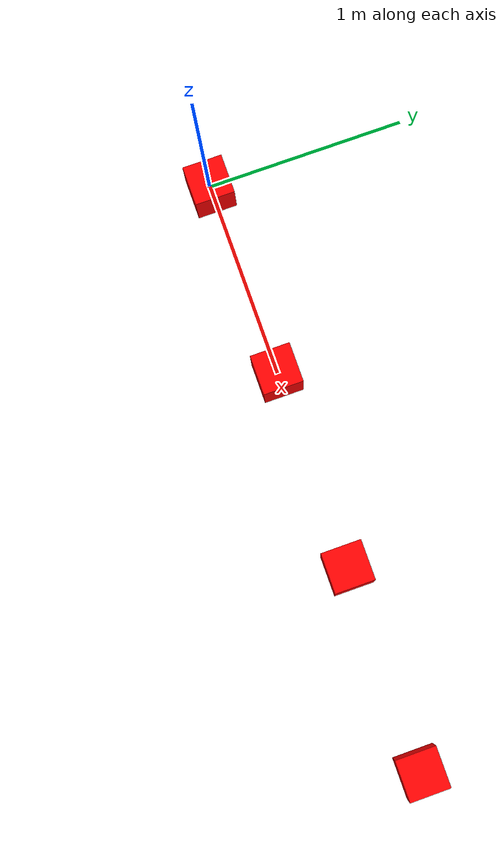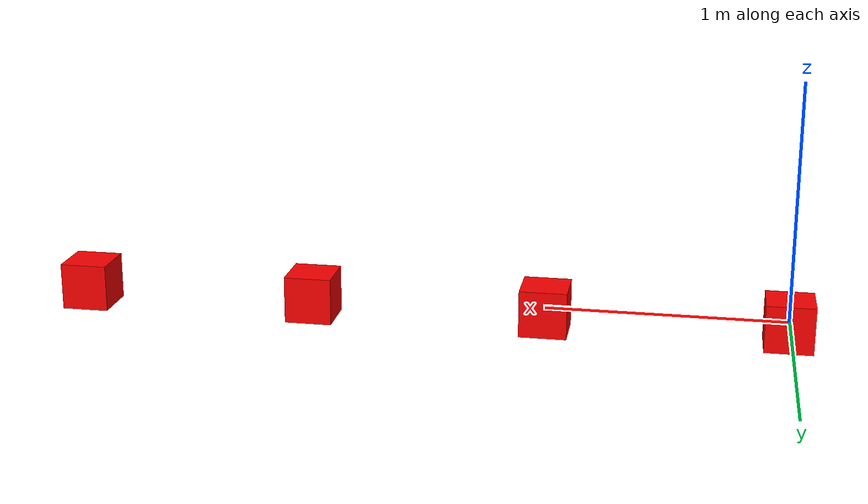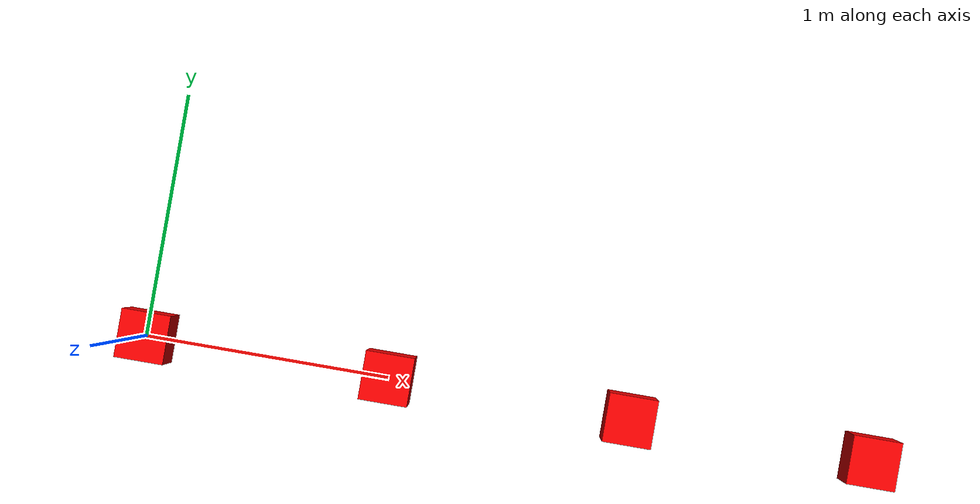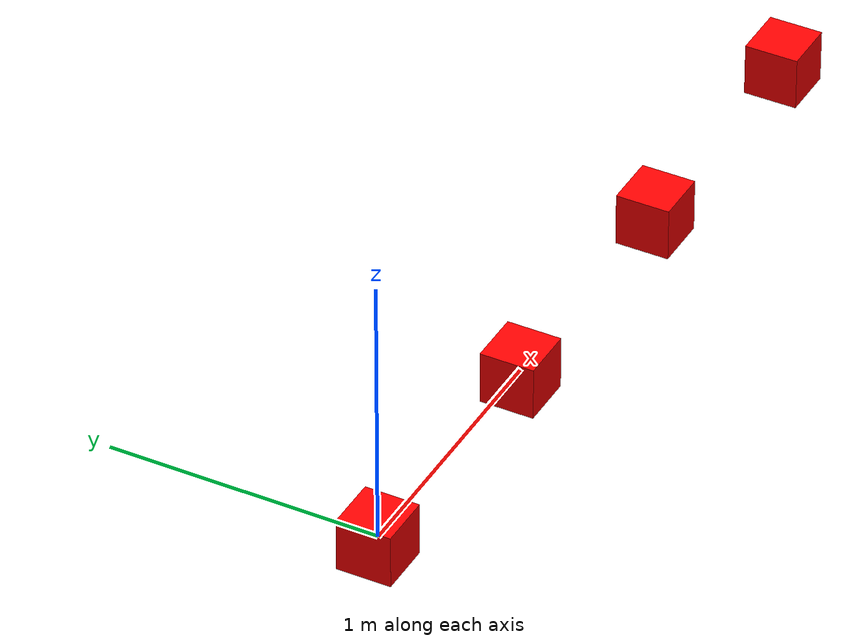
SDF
<sdf version="1.6">
 <world name="urban_qual">
  <physics name="1ms" type="ode">
   <max_step_size>0.004</max_step_size>
   <real_time_factor>1.0</real_time_factor>
  </physics>
  <plugin filename="libignition-gazebo-physics-system.so" name="ignition::gazebo::systems::Physics"/>
  <plugin filename="libignition-gazebo-sensors-system.so" name="ignition::gazebo::systems::Sensors">
   <render_engine>ogre2</render_engine>
  </plugin>
  <plugin filename="libignition-gazebo-user-commands-system.so" name="ignition::gazebo::systems::UserCommands"/>
  <plugin filename="libignition-gazebo-scene-broadcaster-system.so" name="ignition::gazebo::systems::SceneBroadcaster"/>
  <scene>
   <ambient>0.1 0.1 0.1 1.0</ambient>
   <background>0 0 0 1.0</background>
   <grid>false</grid>
   <origin_visual>false</origin_visual>
  </scene>
  <model name="urban_2_story_large_side_1_lights">
   <static>true</static>
   <link name="light1">
    <light type="spot" name="downstairs1">
     <pose>-7.3 -15.1 8.2 0 0 0</pose>
     <diffuse>0.8 0.8 0.8 1</diffuse>
     <specular>0.1 0.1 0.1 1</specular>
     <attenuation>
      <range>20</range>
      <linear>0.2</linear>
      <constant>1.0</constant>
      <quadratic>0.01</quadratic>
     </attenuation>
     <spot><inner_angle>2.0</inner_angle><outer_angle>3.1</outer_angle><falloff>1.2</falloff></spot>
    </light>
    <light type="spot" name="downstairs2">
     <pose>-7.3 -2.1 8.2 0 0 0</pose>
     <diffuse>0.8 0.8 0.8 1</diffuse>
     <specular>0.1 0.1 0.1 1</specular>
     <attenuation>
      <range>20</range>
      <linear>0.2</linear>
      <constant>1.0</constant>
      <quadratic>0.01</quadratic>
     </attenuation>
     <spot><inner_angle>2.0</inner_angle><outer_angle>3.1</outer_angle><falloff>1.2</falloff></spot>
    </light>
    <light type="spot" name="downstairs3">
     <pose>14.3 -2.1 8.2 0 0 0</pose>
     <diffuse>0.8 0.8 0.8 1</diffuse>
     <specular>0.1 0.1 0.1 1</specular>
     <attenuation>
      <range>20</range>
      <linear>0.2</linear>
      <constant>1.0</constant>
      <quadratic>0.01</quadratic>
     </attenuation>
     <spot><inner_angle>2.0</inner_angle><outer_angle>3.1</outer_angle><falloff>1.2</falloff></spot>
    </light>
    <light type="spot" name="downstairs4">
     <pose>14.3 -15.1 8.2 0 0 0</pose>
     <diffuse>0.8 0.8 0.8 1</diffuse>
     <specular>0.1 0.1 0.1 1</specular>
     <attenuation>
      <range>20</range>
      <linear>0.2</linear>
      <constant>1.0</constant>
      <quadratic>0.01</quadratic>
     </attenuation>
     <spot><inner_angle>2.0</inner_angle><outer_angle>3.1</outer_angle><falloff>1.2</falloff></spot>
    </light>
    <light type="spot" name="upstairs1">
     <pose>-7.3 -15.1 18.2 0 0 0</pose>
     <diffuse>0.8 0.8 0.8 1</diffuse>
     <specular>0.1 0.1 0.1 1</specular>
     <attenuation>
      <range>20</range>
      <linear>0.2</linear>
      <constant>1.0</constant>
      <quadratic>0.01</quadratic>
     </attenuation>
     <spot><inner_angle>2.0</inner_angle><outer_angle>3.1</outer_angle><falloff>1.2</falloff></spot>
    </light>
    <light type="spot" name="upstairs2">
     <pose>-7.3 -2.1 18.2 0 0 0</pose>
     <diffuse>0.8 0.8 0.8 1</diffuse>
     <specular>0.1 0.1 0.1 1</specular>
     <attenuation>
      <range>20</range>
      <linear>0.2</linear>
      <constant>1.0</constant>
      <quadratic>0.01</quadratic>
     </attenuation>
     <spot><inner_angle>2.0</inner_angle><outer_angle>3.1</outer_angle><falloff>1.2</falloff></spot>
    </light>
    <light type="spot" name="upstairs3">
     <pose>14.3 -2.1 18.2 0 0 0</pose>
     <diffuse>0.8 0.8 0.8 1</diffuse>
     <specular>0.1 0.1 0.1 1</specular>
     <attenuation>
      <range>20</range>
      <linear>0.2</linear>
      <constant>1.0</constant>
      <quadratic>0.01</quadratic>
     </attenuation>
     <spot><inner_angle>2.0</inner_angle><outer_angle>3.1</outer_angle><falloff>1.2</falloff></spot>
    </light>
    <light type="spot" name="upstairs4">
     <pose>14.3 -15.1 18.2 0 0 0</pose>
     <diffuse>0.8 0.8 0.8 1</diffuse>
     <specular>0.1 0.1 0.1 1</specular>
     <attenuation>
      <range>20</range>
      <linear>0.2</linear>
      <constant>1.0</constant>
      <quadratic>0.01</quadratic>
     </attenuation>
     <spot><inner_angle>2.0</inner_angle><outer_angle>3.1</outer_angle><falloff>1.2</falloff></spot>
    </light>
   </link>
  </model>
  <model name="point_light1">
   <static>true</static>
   <link name="origin">
    <visual name="origin">
     <geometry><box><size>0.2 0.2 0.2</size></box></geometry>
     <material>
      <ambient>1.0 0.0 0.0 1</ambient>
      <diffuse>1.0 0.0 0.0 1</diffuse>
      <specular>1.0 0.0 0.0 1</specular>
     </material>
    </visual>
    <light type="spot" name="spot_light">
     <pose>0 0 -0.1 0 0 0</pose>
     <diffuse>0.5 0.5 0.5 1</diffuse>
     <specular>0.5 0.5 0.5 1</specular>
     <direction>1 0 0</direction>
     <attenuation>
      <range>50</range>
      <linear>0.1</linear>
      <constant>1.0</constant>
      <quadratic>0.01</quadratic>
     </attenuation>
     <spot><inner_angle>2.0</inner_angle><outer_angle>3.0</outer_angle><falloff>0.8</falloff></spot>
    </light>
   </link>
  </model>
  <model name="point_light2">
   <static>true</static>
   <pose>1 0 0 0 0 0</pose>
   <link name="origin">
    <visual name="origin">
     <geometry><box><size>0.2 0.2 0.2</size></box></geometry>
     <material>
      <ambient>1.0 0.0 0.0 1</ambient>
      <diffuse>1.0 0.0 0.0 1</diffuse>
      <specular>1.0 0.0 0.0 1</specular>
     </material>
    </visual>
    <light type="spot" name="spot_light">
     <pose>0 0 -0.1 0 0 0</pose>
     <diffuse>0.5 0.5 0.5 1</diffuse>
     <specular>0.5 0.5 0.5 1</specular>
     <direction>1 0 0</direction>
     <attenuation>
      <range>50</range>
      <linear>0.1</linear>
      <constant>1.0</constant>
      <quadratic>0.01</quadratic>
     </attenuation>
     <spot><inner_angle>2.0</inner_angle><outer_angle>3.0</outer_angle><falloff>0.8</falloff></spot>
    </light>
   </link>
  </model>
  <model name="point_light3">
   <static>true</static>
   <pose>2 0 0 0 0 0</pose>
   <link name="origin">
    <visual name="origin">
     <geometry><box><size>0.2 0.2 0.2</size></box></geometry>
     <material>
      <ambient>1.0 0.0 0.0 1</ambient>
      <diffuse>1.0 0.0 0.0 1</diffuse>
      <specular>1.0 0.0 0.0 1</specular>
     </material>
    </visual>
    <light type="spot" name="spot_light">
     <pose>0 0 -0.1 0 0 0</pose>
     <diffuse>0.5 0.5 0.5 1</diffuse>
     <specular>0.5 0.5 0.5 1</specular>
     <direction>1 0 0</direction>
     <attenuation>
      <range>50</range>
      <linear>0.1</linear>
      <constant>1.0</constant>
      <quadratic>0.01</quadratic>
     </attenuation>
     <spot><inner_angle>2.0</inner_angle><outer_angle>3.0</outer_angle><falloff>0.8</falloff></spot>
    </light>
   </link>
  </model>
  <model name="point_light4">
   <static>true</static>
   <pose>3 0 0 0 0 0</pose>
   <link name="origin">
    <visual name="origin">
     <geometry><box><size>0.2 0.2 0.2</size></box></geometry>
     <material>
      <ambient>1.0 0.0 0.0 1</ambient>
      <diffuse>1.0 0.0 0.0 1</diffuse>
      <specular>1.0 0.0 0.0 1</specular>
     </material>
    </visual>
    <light type="spot" name="spot_light">
     <pose>0 0 -0.1 0 0 0</pose>
     <diffuse>0.5 0.5 0.5 1</diffuse>
     <specular>0.5 0.5 0.5 1</specular>
     <direction>1 0 0</direction>
     <attenuation>
      <range>50</range>
      <linear>0.1</linear>
      <constant>1.0</constant>
      <quadratic>0.01</quadratic>
     </attenuation>
     <spot><inner_angle>2.0</inner_angle><outer_angle>3.0</outer_angle><falloff>0.8</falloff></spot>
    </light>
   </link>
  </model>
 </world>
</sdf>
